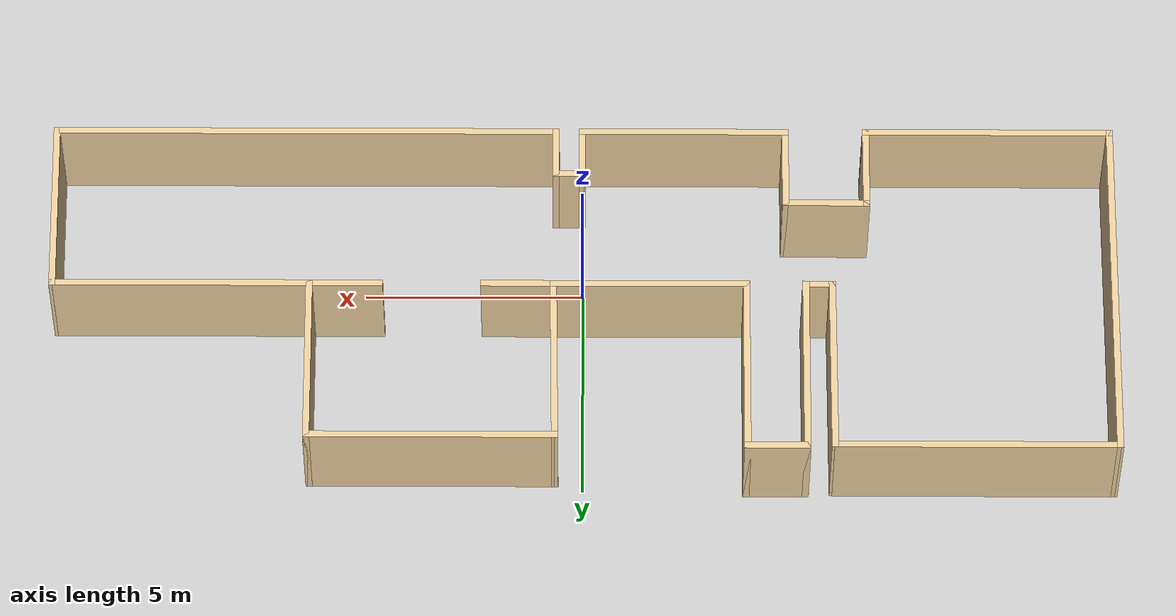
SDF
<sdf version="1.7">
 <world name="default">
  <light name="sun" type="directional">
   <pose>0 0 10 0 -0 0</pose>
   <diffuse>0.8 0.8 0.8 1</diffuse>
   <specular>0.2 0.2 0.2 1</specular>
   <attenuation>
    <range>1000</range>
    <constant>0.9</constant>
    <linear>0.01</linear>
    <quadratic>0.001</quadratic>
   </attenuation>
   <direction>-0.5 0.1 -0.9</direction>
   <spot><inner_angle>0</inner_angle><outer_angle>0</outer_angle><falloff>0</falloff></spot>
  </light>
  <model name="ground_plane">
   <static>1</static>
   <link name="link">
    <collision name="collision">
     <geometry><plane><normal>0 0 1</normal><size>100 100</size></plane></geometry>
     <surface>
      <contact><collide_bitmask>65535</collide_bitmask></contact>
      <friction><ode><mu>100</mu><mu2>50</mu2></ode></friction>
     </surface>
    </collision>
    <visual name="visual">
     <cast_shadows>0</cast_shadows>
     <geometry><plane><normal>0 0 1</normal><size>100 100</size></plane></geometry>
     <material>
      <script><uri>file://media/materials/scripts/gazebo.material</uri><name>Gazebo/Grey</name></script>
     </material>
    </visual>
   </link>
  </model>
  <gravity>0 0 -9.8</gravity>
  <magnetic_field>6e-06 2.3e-05 -4.2e-05</magnetic_field>
  <atmosphere type="adiabatic"/>
  <physics type="ode">
   <max_step_size>0.001</max_step_size>
   <real_time_factor>1</real_time_factor>
   <real_time_update_rate>1000</real_time_update_rate>
  </physics>
  <scene><ambient>0.4 0.4 0.4 1</ambient><background>0.7 0.7 0.7 1</background><shadows>1</shadows></scene>
  <spherical_coordinates>
   <surface_model>EARTH_WGS84</surface_model>
   <latitude_deg>0</latitude_deg>
   <longitude_deg>0</longitude_deg>
   <elevation>0</elevation>
   <heading_deg>0</heading_deg>
  </spherical_coordinates>
  <model name="ignc">
   <pose>0 1 0 0 -0 0</pose>
   <link name="Wall_10">
    <collision name="Wall_10_Collision">
     <geometry><box><size>4 0.15 2.5</size></box></geometry>
     <pose>0 0 1.25 0 -0 0</pose>
    </collision>
    <visual name="Wall_10_Visual">
     <pose>0 0 1.25 0 -0 0</pose>
     <geometry><box><size>4 0.15 2.5</size></box></geometry>
     <material>
      <script><uri>file://media/materials/scripts/gazebo.material</uri><name>Gazebo/Grey</name></script>
      <ambient>0.921569 0.807843 0.615686 1</ambient>
     </material>
     <meta><layer>0</layer></meta>
    </visual>
    <pose>0.653337 1.85324 0 0 -0 1.58281</pose>
   </link>
   <link name="Wall_12">
    <collision name="Wall_12_Collision">
     <geometry><box><size>5.75 0.15 2.5</size></box></geometry>
     <pose>0 0 1.25 0 -0 0</pose>
    </collision>
    <visual name="Wall_12_Visual">
     <pose>0 0 1.25 0 -0 0</pose>
     <geometry><box><size>5.75 0.15 2.5</size></box></geometry>
     <material>
      <script><uri>file://media/materials/scripts/gazebo.material</uri><name>Gazebo/Grey</name></script>
      <ambient>0.921569 0.807843 0.615686 1</ambient>
     </material>
     <meta><layer>0</layer></meta>
    </visual>
    <pose>3.43021 3.77824 0 0 -0 0</pose>
   </link>
   <link name="Wall_18">
    <collision name="Wall_18_Collision">
     <geometry><box><size>11.5 0.15 2.5</size></box></geometry>
     <pose>0 0 1.25 0 -0 0</pose>
    </collision>
    <visual name="Wall_18_Visual">
     <pose>0 0 1.25 0 -0 0</pose>
     <geometry><box><size>11.5 0.15 2.5</size></box></geometry>
     <material>
      <script><uri>file://media/materials/scripts/gazebo.material</uri><name>Gazebo/Grey</name></script>
      <ambient>0.921569 0.807843 0.615686 1</ambient>
     </material>
     <meta><layer>0</layer></meta>
    </visual>
    <pose>6.30521 -4.02176 0 0 -0 3.14159</pose>
   </link>
   <link name="Wall_20">
    <collision name="Wall_20_Collision">
     <geometry><box><size>1.25 0.15 2.5</size></box></geometry>
     <pose>0 0 1.25 0 -0 0</pose>
    </collision>
    <visual name="Wall_20_Visual">
     <pose>0 0 1.25 0 -0 0</pose>
     <geometry><box><size>1.25 0.15 2.5</size></box></geometry>
     <material>
      <script><uri>file://media/materials/scripts/gazebo.material</uri><name>Gazebo/Grey</name></script>
      <ambient>0.921569 0.807843 0.615686 1</ambient>
     </material>
     <meta><layer>0</layer></meta>
    </visual>
    <pose>0.630206 -3.47176 0 0 -0 1.5708</pose>
   </link>
   <link name="Wall_21">
    <collision name="Wall_21_Collision">
     <geometry><box><size>0.75 0.15 2.5</size></box></geometry>
     <pose>0 0 1.25 0 -0 0</pose>
    </collision>
    <visual name="Wall_21_Visual">
     <pose>0 0 1.25 0 -0 0</pose>
     <geometry><box><size>0.75 0.15 2.5</size></box></geometry>
     <material>
      <script><uri>file://media/materials/scripts/gazebo.material</uri><name>Gazebo/Grey</name></script>
      <ambient>0.921569 0.807843 0.615686 1</ambient>
     </material>
     <meta><layer>0</layer></meta>
    </visual>
    <pose>0.330206 -2.92176 0 0 -0 3.14159</pose>
   </link>
   <link name="Wall_22">
    <collision name="Wall_22_Collision">
     <geometry><box><size>1.25 0.15 2.5</size></box></geometry>
     <pose>0 0 1.25 0 -0 0</pose>
    </collision>
    <visual name="Wall_22_Visual">
     <pose>0 0 1.25 0 -0 0</pose>
     <geometry><box><size>1.25 0.15 2.5</size></box></geometry>
     <material>
      <script><uri>file://media/materials/scripts/gazebo.material</uri><name>Gazebo/Grey</name></script>
      <ambient>0.921569 0.807843 0.615686 1</ambient>
     </material>
     <meta><layer>0</layer></meta>
    </visual>
    <pose>0.030206 -3.47176 0 0 -0 -1.5708</pose>
   </link>
   <link name="Wall_23">
    <collision name="Wall_23_Collision">
     <geometry><box><size>4.81118 0.15 2.5</size></box></geometry>
     <pose>0 0 1.25 0 -0 0</pose>
    </collision>
    <visual name="Wall_23_Visual">
     <pose>0 0 1.25 0 -0 0</pose>
     <geometry><box><size>4.81118 0.15 2.5</size></box></geometry>
     <material>
      <script><uri>file://media/materials/scripts/gazebo.material</uri><name>Gazebo/Grey</name></script>
      <ambient>0.921569 0.807843 0.615686 1</ambient>
     </material>
     <meta><layer>0</layer></meta>
    </visual>
    <pose>-2.30038 -4.02176 0 0 -0 3.14159</pose>
   </link>
   <link name="Wall_38">
    <collision name="Wall_38_Collision">
     <geometry><box><size>1.75 0.15 2.5</size></box></geometry>
     <pose>0 0 1.25 0 -0 0</pose>
    </collision>
    <visual name="Wall_38_Visual">
     <pose>0 0 1.25 0 -0 0</pose>
     <geometry><box><size>1.75 0.15 2.5</size></box></geometry>
     <material>
      <script><uri>file://media/materials/scripts/gazebo.material</uri><name>Gazebo/Grey</name></script>
      <ambient>0.921569 0.807843 0.615686 1</ambient>
     </material>
     <meta><layer>0</layer></meta>
    </visual>
    <pose>1.45334 -0.071761 0 0 -0 0</pose>
   </link>
   <link name="Wall_4">
    <collision name="Wall_4_Collision">
     <geometry><box><size>4.20982 0.15 2.5</size></box></geometry>
     <pose>0 0 1.25 0 -0 0</pose>
    </collision>
    <visual name="Wall_4_Visual">
     <pose>0 0 1.25 0 -0 0</pose>
     <geometry><box><size>4.20982 0.15 2.5</size></box></geometry>
     <material>
      <script><uri>file://media/materials/scripts/gazebo.material</uri><name>Gazebo/Grey</name></script>
      <ambient>0.921569 0.807843 0.615686 1</ambient>
     </material>
     <meta><layer>0</layer></meta>
    </visual>
    <pose>-5.67985 1.95812 0 0 -0 -1.56584</pose>
   </link>
   <link name="Wall_40">
    <collision name="Wall_40_Collision">
     <geometry><box><size>4 0.15 2.5</size></box></geometry>
     <pose>0 0 1.25 0 -0 0</pose>
    </collision>
    <visual name="Wall_40_Visual">
     <pose>0 0 1.25 0 -0 0</pose>
     <geometry><box><size>4 0.15 2.5</size></box></geometry>
     <material>
      <script><uri>file://media/materials/scripts/gazebo.material</uri><name>Gazebo/Grey</name></script>
      <ambient>0.921569 0.807843 0.615686 1</ambient>
     </material>
     <meta><layer>0</layer></meta>
    </visual>
    <pose>6.23021 1.85324 0 0 -0 -1.5708</pose>
   </link>
   <link name="Wall_43">
    <collision name="Wall_43_Collision">
     <geometry><box><size>1.75 0.15 2.5</size></box></geometry>
     <pose>0 0 1.25 0 -0 0</pose>
    </collision>
    <visual name="Wall_43_Visual">
     <pose>0 0 1.25 0 -0 0</pose>
     <geometry><box><size>1.75 0.15 2.5</size></box></geometry>
     <material>
      <script><uri>file://media/materials/scripts/gazebo.material</uri><name>Gazebo/Grey</name></script>
      <ambient>0.921569 0.807843 0.615686 1</ambient>
     </material>
     <meta><layer>0</layer></meta>
    </visual>
    <pose>5.43021 -0.071761 0 0 -0 3.14159</pose>
   </link>
   <link name="Wall_46">
    <collision name="Wall_46_Collision">
     <geometry><box><size>6 0.15 2.5</size></box></geometry>
     <pose>0 0 1.25 0 -0 0</pose>
    </collision>
    <visual name="Wall_46_Visual">
     <pose>0 0 1.25 0 -0 0</pose>
     <geometry><box><size>6 0.15 2.5</size></box></geometry>
     <material>
      <script><uri>file://media/materials/scripts/gazebo.material</uri><name>Gazebo/Grey</name></script>
      <ambient>0.921569 0.807843 0.615686 1</ambient>
     </material>
     <meta><layer>0</layer></meta>
    </visual>
    <pose>9.15521 -0.071761 0 0 -0 0</pose>
   </link>
   <link name="Wall_5">
    <collision name="Wall_5_Collision">
     <geometry><box><size>0.75 0.15 2.5</size></box></geometry>
     <pose>0 0 1.25 0 -0 0</pose>
    </collision>
    <visual name="Wall_5_Visual">
     <pose>0 0 1.25 0 -0 0</pose>
     <geometry><box><size>0.75 0.15 2.5</size></box></geometry>
     <material>
      <script><uri>file://media/materials/scripts/gazebo.material</uri><name>Gazebo/Grey</name></script>
      <ambient>0.921569 0.807843 0.615686 1</ambient>
     </material>
     <meta><layer>0</layer></meta>
    </visual>
    <pose>-5.36979 -0.071761 0 0 -0 0</pose>
   </link>
   <link name="Wall_56">
    <collision name="Wall_56_Collision">
     <geometry><box><size>4.10614 0.15 2.5</size></box></geometry>
     <pose>0 0 1.25 0 -0 0</pose>
    </collision>
    <visual name="Wall_56_Visual">
     <pose>0 0 1.25 0 -0 0</pose>
     <geometry><box><size>4.10614 0.15 2.5</size></box></geometry>
     <material>
      <script><uri>file://media/materials/scripts/gazebo.material</uri><name>Gazebo/Grey</name></script>
      <ambient>0.921569 0.807843 0.615686 1</ambient>
     </material>
     <meta><layer>0</layer></meta>
    </visual>
    <pose>12.0905 -2.04981 0 0 -0 -1.56557</pose>
   </link>
   <link name="Wall_6">
    <collision name="Wall_6_Collision">
     <geometry><box><size>4.25 0.15 2.5</size></box></geometry>
     <pose>0 0 1.25 0 -0 0</pose>
    </collision>
    <visual name="Wall_6_Visual">
     <pose>0 0 1.25 0 -0 0</pose>
     <geometry><box><size>4.25 0.15 2.5</size></box></geometry>
     <material>
      <script><uri>file://media/materials/scripts/gazebo.material</uri><name>Gazebo/Grey</name></script>
      <ambient>0.921569 0.807843 0.615686 1</ambient>
     </material>
     <meta><layer>0</layer></meta>
    </visual>
    <pose>-5.06979 1.97824 0 0 -0 1.5708</pose>
   </link>
   <link name="Wall_68">
    <collision name="Wall_68_Collision">
     <geometry><box><size>2 0.15 2.5</size></box></geometry>
     <pose>0 0 1.25 0 -0 0</pose>
    </collision>
    <visual name="Wall_68_Visual">
     <pose>0 0 1.25 0 -0 0</pose>
     <geometry><box><size>2 0.15 2.5</size></box></geometry>
     <material>
      <script><uri>file://media/materials/scripts/gazebo.material</uri><name>Gazebo/Grey</name></script>
      <ambient>0.921569 0.807843 0.615686 1</ambient>
     </material>
     <meta><layer>0</layer></meta>
    </visual>
    <pose>-4.63097 -3.09676 0 0 -0 1.5708</pose>
   </link>
   <link name="Wall_69">
    <collision name="Wall_69_Collision">
     <geometry><box><size>2 0.15 2.5</size></box></geometry>
     <pose>0 0 1.25 0 -0 0</pose>
    </collision>
    <visual name="Wall_69_Visual">
     <pose>0 0 1.25 0 -0 0</pose>
     <geometry><box><size>2 0.15 2.5</size></box></geometry>
     <material>
      <script><uri>file://media/materials/scripts/gazebo.material</uri><name>Gazebo/Grey</name></script>
      <ambient>0.921569 0.807843 0.615686 1</ambient>
     </material>
     <meta><layer>0</layer></meta>
    </visual>
    <pose>-5.55597 -2.17176 0 0 -0 3.14159</pose>
   </link>
   <link name="Wall_7">
    <collision name="Wall_7_Collision">
     <geometry><box><size>1.5 0.15 2.5</size></box></geometry>
     <pose>0 0 1.25 0 -0 0</pose>
    </collision>
    <visual name="Wall_7_Visual">
     <pose>0 0 1.25 0 -0 0</pose>
     <geometry><box><size>1.5 0.15 2.5</size></box></geometry>
     <material>
      <script><uri>file://media/materials/scripts/gazebo.material</uri><name>Gazebo/Grey</name></script>
      <ambient>0.921569 0.807843 0.615686 1</ambient>
     </material>
     <meta><layer>0</layer></meta>
    </visual>
    <pose>-4.39479 4.02824 0 0 -0 0</pose>
   </link>
   <link name="Wall_70">
    <collision name="Wall_70_Collision">
     <geometry><box><size>2 0.15 2.5</size></box></geometry>
     <pose>0 0 1.25 0 -0 0</pose>
    </collision>
    <visual name="Wall_70_Visual">
     <pose>0 0 1.25 0 -0 0</pose>
     <geometry><box><size>2 0.15 2.5</size></box></geometry>
     <material>
      <script><uri>file://media/materials/scripts/gazebo.material</uri><name>Gazebo/Grey</name></script>
      <ambient>0.921569 0.807843 0.615686 1</ambient>
     </material>
     <meta><layer>0</layer></meta>
    </visual>
    <pose>-6.48097 -3.09676 0 0 -0 -1.5708</pose>
   </link>
   <link name="Wall_71">
    <collision name="Wall_71_Collision">
     <geometry><box><size>5.75 0.15 2.5</size></box></geometry>
     <pose>0 0 1.25 0 -0 0</pose>
    </collision>
    <visual name="Wall_71_Visual">
     <pose>0 0 1.25 0 -0 0</pose>
     <geometry><box><size>5.75 0.15 2.5</size></box></geometry>
     <material>
      <script><uri>file://media/materials/scripts/gazebo.material</uri><name>Gazebo/Grey</name></script>
      <ambient>0.921569 0.807843 0.615686 1</ambient>
     </material>
     <meta><layer>0</layer></meta>
    </visual>
    <pose>-9.28097 -4.02176 0 0 -0 3.14159</pose>
   </link>
   <link name="Wall_76">
    <collision name="Wall_76_Collision">
     <geometry><box><size>8.16965 0.15 2.5</size></box></geometry>
     <pose>0 0 1.25 0 -0 0</pose>
    </collision>
    <visual name="Wall_76_Visual">
     <pose>0 0 1.25 0 -0 0</pose>
     <geometry><box><size>8.16965 0.15 2.5</size></box></geometry>
     <material>
      <script><uri>file://media/materials/scripts/gazebo.material</uri><name>Gazebo/Grey</name></script>
      <ambient>0.921569 0.807843 0.615686 1</ambient>
     </material>
     <meta><layer>0</layer></meta>
    </visual>
    <pose>-12.091 -0.011989 0 0 -0 1.5733</pose>
   </link>
   <link name="Wall_79">
    <collision name="Wall_79_Collision">
     <geometry><box><size>6.5 0.15 2.5</size></box></geometry>
     <pose>0 0 1.25 0 -0 0</pose>
    </collision>
    <visual name="Wall_79_Visual">
     <pose>0 0 1.25 0 -0 0</pose>
     <geometry><box><size>6.5 0.15 2.5</size></box></geometry>
     <material>
      <script><uri>file://media/materials/scripts/gazebo.material</uri><name>Gazebo/Grey</name></script>
      <ambient>0.921569 0.807843 0.615686 1</ambient>
     </material>
     <meta><layer>0</layer></meta>
    </visual>
    <pose>-8.92609 3.99778 0 0 -0 0</pose>
   </link>
   <link name="Wall_8">
    <collision name="Wall_8_Collision">
     <geometry><box><size>4.25 0.15 2.5</size></box></geometry>
     <pose>0 0 1.25 0 -0 0</pose>
    </collision>
    <visual name="Wall_8_Visual">
     <pose>0 0 1.25 0 -0 0</pose>
     <geometry><box><size>4.25 0.15 2.5</size></box></geometry>
     <material>
      <script><uri>file://media/materials/scripts/gazebo.material</uri><name>Gazebo/Grey</name></script>
      <ambient>0.921569 0.807843 0.615686 1</ambient>
     </material>
     <meta><layer>0</layer></meta>
    </visual>
    <pose>-3.71979 1.97824 0 0 -0 -1.5708</pose>
   </link>
   <link name="Wall_9">
    <collision name="Wall_9_Collision">
     <geometry><box><size>4.54626 0.15 2.5</size></box></geometry>
     <pose>0 0 1.25 0 -0 0</pose>
    </collision>
    <visual name="Wall_9_Visual">
     <pose>0 0 1.25 0 -0 0</pose>
     <geometry><box><size>4.54626 0.15 2.5</size></box></geometry>
     <material>
      <script><uri>file://media/materials/scripts/gazebo.material</uri><name>Gazebo/Grey</name></script>
      <ambient>0.921569 0.807843 0.615686 1</ambient>
     </material>
     <meta><layer>0</layer></meta>
    </visual>
    <pose>-1.52166 -0.071761 0 0 -0 0</pose>
   </link>
   <static>1</static>
  </model>
 </world>
</sdf>
